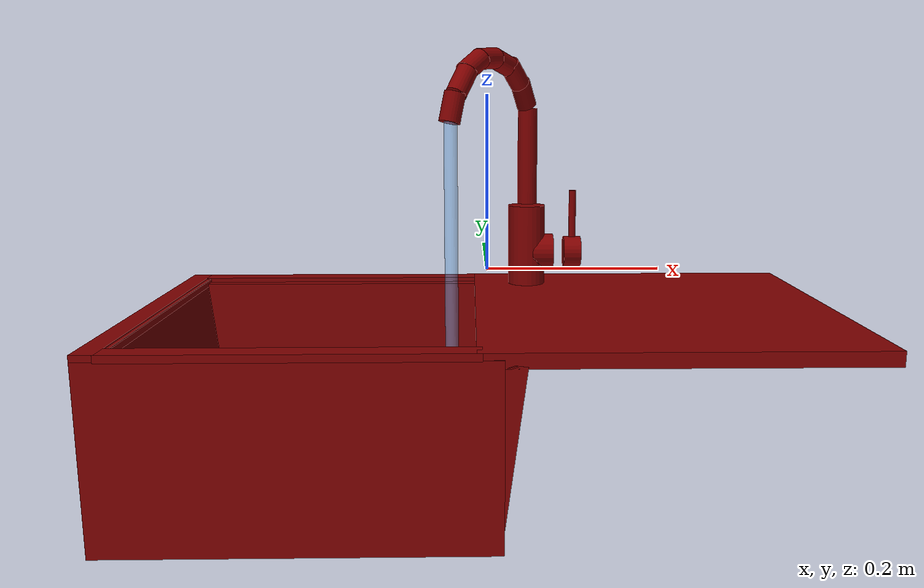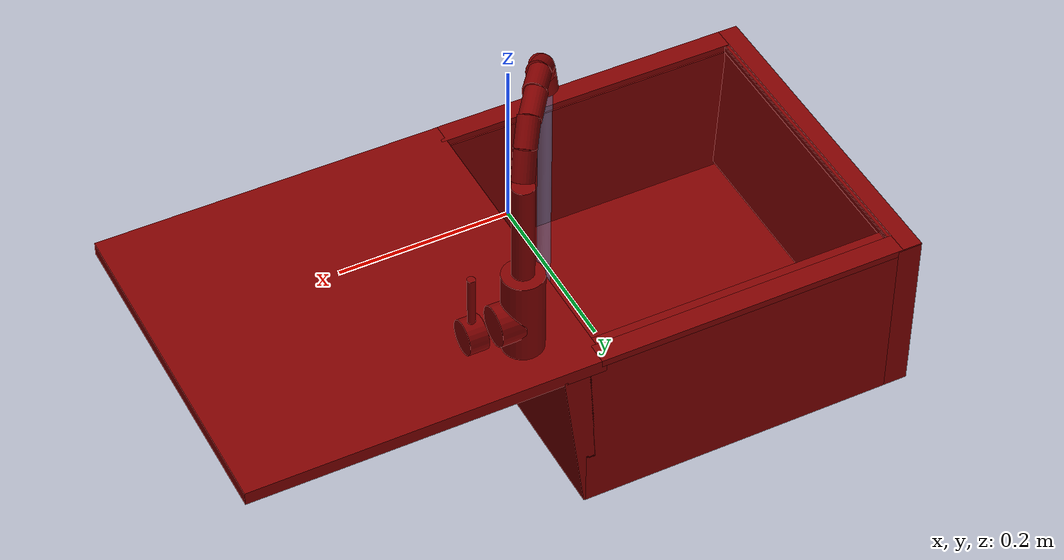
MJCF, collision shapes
<?xml version='1.0' encoding='UTF-8'?>
<mujoco model="model">
  <option timestep="0.002" gravity="0.0 0.0 -9.81"/>
  <compiler angle="radian"/>
  <asset>
    <mesh file="visuals/handle.obj" name="handle_vis"/>
    <mesh file="visuals/Body001.obj" name="Body001_vis"/>
    <mesh file="visuals/spout.obj" name="spout_vis"/>
    <texture file="visuals/T_BC001.png" name="Body001_material" type="2d"/>
    <material name="Body001_material" rgba="1 1 1 1.0" texture="Body001_material" shininess="-1023.0" specular="1"/>
    <texture file="visuals/T_BC001.png" name="handle_material" type="2d"/>
    <material name="handle_material" rgba="1 1 1 1.0" texture="handle_material" shininess="-1023.0" specular="1"/>
    <texture file="visuals/T_BC001.png" name="spout_material" type="2d"/>
    <material name="spout_material" rgba="1 1 1 1.0" texture="spout_material" shininess="-1023.0" specular="1"/>
  </asset>
  <default>
    <default class="visual">
      <geom conaffinity="0" contype="0" group="1" type="mesh"/>
    </default>
    <default class="collision">
      <geom group="0" rgba="0.5 0 0 0.5" solimp="0.998 0.998 0.001" solref="0.001 2"/>
    </default>
    <default class="spawn">
      <geom group="0" rgba="1 1 1 0.5" contype="0" conaffinity="0"/>
      <site group="0" rgba="1 1 1 0.5"/>
    </default>
    <default class="region">
      <geom group="1" conaffinity="0" contype="0" rgba="0 1 0 0"/>
    </default>
  </default>
  <worldbody>
    <body>
      <body name="object">
        <geom mesh="Body001_vis" type="mesh" solimp="0.998 0.998 0.001" solref="0.001 1" friction="0.95 0.3 0.1" class="visual" material="Body001_material"/>
        <geom class="collision" type="box" pos="0.19406246 0.00013597 -0.05245377" size="0.2075372189283371 0.203512042760849 0.00809683557599783" quat="1.0 0.0 0.0 0.0"/>
        <geom class="collision" type="box" pos="-0.36712403 -0.00140002 -0.12621664" size="0.08116208761930466 0.18408437073230743 0.0025410735979676247" quat="0.7442553043365479 5.129796587510782e-09 0.6678952574729919 -5.129797031599992e-09"/>
        <geom class="collision" type="box" pos="0.00803555 0.00013596 -0.15428721" size="0.09872521460056305 0.203512042760849 0.015717335045337677" quat="0.6588985919952393 -5.227831501031233e-09 0.752231776714325 5.341778130940611e-09"/>
        <geom class="collision" type="box" pos="-0.18193817 0.17197767 -0.13100939" size="0.19039678573608398 0.008440336212515831 0.08124972879886627" quat="1.0 0.0 0.0 0.0"/>
        <geom class="collision" type="box" pos="-0.18193817 -0.17359039 -0.13316748" size="0.08116210252046585 0.189422145485878 0.0037975278683006763" quat="0.5207650065422058 -0.4783340096473694 0.47833043336868286 0.5207690000534058"/>
        <geom class="collision" type="box" pos="-0.38991125 -0.00000002 -0.04856817" size="0.011884193867444992 0.20364785194396973 0.00421125628054142" quat="1.0 0.0 0.0 0.0"/>
        <geom class="collision" type="box" pos="-0.19359860 0.19096533 -0.04856822" size="0.18591833114624023 0.012682652100920677 0.004211256746202707" quat="1.0 0.0 0.0 0.0"/>
        <geom class="collision" type="box" pos="-0.19359858 -0.19113478 -0.04856821" size="0.18591846525669098 0.012513295747339725 0.004211264196783304" quat="1.0 0.0 0.0 0.0"/>
        <geom class="collision" type="cylinder" pos="0.05497976 0.14278680 0.00650619" size="0.023840952664613724 0.052419181913137436" quat="1.0 0.0 0.0 0.0"/>
        <geom class="collision" type="cylinder" pos="0.07573969 0.14290978 -0.00244094" size="0.023075921460986137 0.013886610977351665" quat="0.5004220604896545 0.5004235506057739 0.4995776116847992 0.4995760917663574"/>
        <geom class="collision" type="box" pos="-0.19390073 -0.19131759 -0.15312590" size="0.2078946828842163 0.012330461293458939 0.10161294788122177" quat="1.0 0.0 0.0 0.0"/>
        <geom class="collision" type="box" pos="-0.38712771 0.00927900 -0.15036929" size="0.014667726121842861 0.19436898827552795 0.10436961054801941" quat="1.0 0.0 0.0 0.0"/>
        <geom class="collision" type="box" pos="-0.18193817 -0.17359039 -0.13316748" size="0.08116210252046585 0.189422145485878 0.0037975278683006763" quat="0.5207650065422058 -0.4783340096473694 0.47833043336868286 0.5207690000534058"/>
        <geom class="collision" type="box" pos="-0.18320183 0.19012529 -0.15312583" size="0.19178429245948792 0.013522718101739883 0.10161303728818893" quat="1.0 0.0 0.0 0.0"/>
        <geom class="collision" type="box" pos="-0.19637339 -0.00111665 -0.23313919" size="0.18299676477909088 0.1823423057794571 0.021599719300866127" quat="1.0 0.0 0.0 0.0"/>
        <body name="handle">
          <joint axis="1.0 0.0 0.0" pos="0.11040406 0.14307101 -0.00190102" limited="true" name="handle_temp_joint" type="hinge" range="-0.7853981633974483 0.7853981633974483" damping="0.5" frictionloss="1" armature="2"/>
          <joint axis="0.0 1.0 0.0" pos="0.11040406 0.14307101 -0.00190102" limited="true" name="handle_joint" type="hinge" range="0 0.5" damping="0.5" frictionloss="1" armature="2"/>
          <geom mesh="handle_vis" type="mesh" solimp="0.998 0.998 0.001" solref="0.001 1" friction="0.95 0.3 0.1" class="visual" material="handle_material"/>
          <geom class="collision" type="cylinder" pos="0.11479576 0.14290978 -0.00244094" size="0.01993708312511444 0.011085091158747673" quat="0.5004220604896545 0.5004235506057739 0.4995776116847992 0.4995760917663574"/>
          <geom name="handle_main" class="collision" type="cylinder" pos="0.11501891 0.14302929 0.04787062" size="0.004608677700161934 0.03050174191594124" quat="1.0 0.0 0.0 0.0"/>
        </body>
        <body name="spout">
          <joint axis="0.0 0.0 1.0" pos="0.05565893 0.14310012 0.15621043" limited="true" name="spout_joint" range="-0.8726646259971648 0.8726646259971648" type="hinge" damping="10"/>
          <site type="cylinder" rgba="0.5 0.75 1 0.5" size="0.0077989068813622 0.19345371425151825" pos="-0.04141793 0.00459233 -0.01722775" name="water"/>
          <geom mesh="spout_vis" type="mesh" solimp="0.998 0.998 0.001" solref="0.001 1" friction="0.95 0.3 0.1" class="visual" material="spout_material"/>
          <geom class="collision" type="cylinder" pos="0.05535310 0.14316014 0.12255216" size="0.012510106898844242 0.06103218346834183" quat="1.0 0.0 0.0 0.0" name="spout_main"/>
          <geom class="collision" type="cylinder" pos="0.04883869 0.13204138 0.20164465" size="0.012510107830166817 0.01728254184126854" quat="0.931800365447998 0.16080592572689056 -0.197274312376976 0.2587902843952179"/>
          <geom class="collision" type="cylinder" pos="0.03669737 0.11482970 0.22568966" size="0.012510106898844242 0.01728253997862339" quat="0.8792769908905029 0.24185660481452942 -0.3171517848968506 0.26036909222602844"/>
          <geom class="collision" type="cylinder" pos="0.01968194 0.09452865 0.23931834" size="0.012510106898844242 0.01728254184126854" quat="0.7669440507888794 0.33295169472694397 -0.49313250184059143 0.24033382534980774"/>
          <geom class="collision" type="cylinder" pos="0.00164897 0.06778135 0.24251698" size="0.012510106898844242 0.01728254184126854" quat="0.6546440720558167 0.42956554889678955 -0.590735137462616 0.19479888677597046"/>
          <geom class="collision" type="cylinder" pos="-0.01535147 0.04219274 0.23382611" size="0.012510106898844242 0.01728254184126854" quat="0.4891144633293152 0.5159124732017517 -0.6901617050170898 0.13519686460494995"/>
          <geom class="collision" type="cylinder" pos="-0.02837543 0.02177590 0.21393546" size="0.012510106898844242 0.01728254184126854" quat="0.3158448338508606 0.5897110104560852 -0.7400115132331848 0.0697561502456665"/>
          <geom class="collision" type="cylinder" pos="-0.03924722 0.00800258 0.18546491" size="0.012510106898844242 0.01728254184126854" quat="0.1277783215045929 0.6366448998451233 -0.7604933977127075 -0.0024071841035038233"/>
        </body>
        <geom class="region" name="reg_basin" type="box" pos="-0.185557085 -0.0010400900000000074 -0.126604365" size="0.16894272500000002 0.15921380000000002 0.083014535"/>
        <geom class="region" name="reg_main" type="box" pos="-2.2999999998996046e-07 -2.000000000335067e-08 -0.14962328" size="0.40279521 0.20464802999999998 0.10626634999999998"/>
      </body>
    </body>
  </worldbody>
  <actuator>
    <motor name="handle_joint_actuator" joint="handle_joint" gear="10"/>
    <motor name="handle_temp_joint_actuator" joint="handle_temp_joint" gear="10"/>
    <motor name="spout_joint_actuator" joint="spout_joint" gear="10"/>
  </actuator>
</mujoco>
